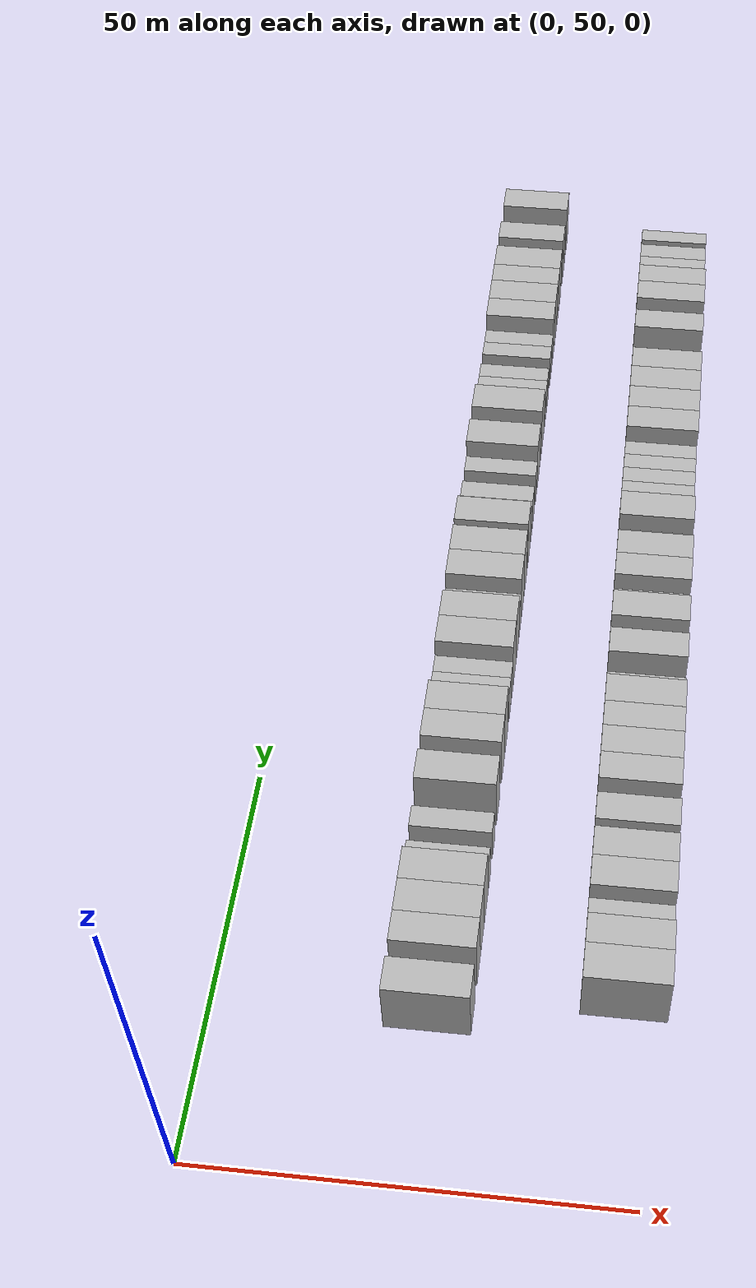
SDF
<sdf version="1.6">
 <world name="default">
  <model name="building_74">
   <static>1</static>
   <pose>25.0000 70.2187 0 0.000000 0.000000 0.000000</pose>
   <link name="link">
    <pose>0 0 4.50 0 0 0</pose>
    <collision name="collision"><geometry><box><size>10.0000 4.1188 9.0000</size></box></geometry></collision>
    <visual name="visual">
     <cast_shadows>0</cast_shadows>
     <geometry><box><size>10.0000 4.1188 9.0000</size></box></geometry>
     <material>
      <script>
       <uri>model://HANNAS_wall/materials/scripts</uri>
       <uri>model://HANNAS_wall/materials/textures</uri>
       <name>vrc/HANNAS_wall</name>
      </script>
     </material>
    </visual>
   </link>
  </model>
  <model name="building_75">
   <static>1</static>
   <pose>25.0000 76.2007 0 0.000000 0.000000 0.000000</pose>
   <link name="link">
    <pose>0 0 4.50 0 0 0</pose>
    <collision name="collision"><geometry><box><size>10.0000 3.8452 9.0000</size></box></geometry></collision>
    <visual name="visual">
     <cast_shadows>0</cast_shadows>
     <geometry><box><size>10.0000 3.8452 9.0000</size></box></geometry>
     <material>
      <script>
       <uri>model://HANNAS_wall/materials/scripts</uri>
       <uri>model://HANNAS_wall/materials/textures</uri>
       <name>vrc/HANNAS_wall</name>
      </script>
     </material>
    </visual>
   </link>
  </model>
  <model name="building_76">
   <static>1</static>
   <pose>25.0000 80.2020 0 0.000000 0.000000 0.000000</pose>
   <link name="link">
    <pose>0 0 4.50 0 0 0</pose>
    <collision name="collision"><geometry><box><size>10.0000 4.1574 9.0000</size></box></geometry></collision>
    <visual name="visual">
     <cast_shadows>0</cast_shadows>
     <geometry><box><size>10.0000 4.1574 9.0000</size></box></geometry>
     <material>
      <script>
       <uri>model://HANNAS_wall/materials/scripts</uri>
       <uri>model://HANNAS_wall/materials/textures</uri>
       <name>vrc/HANNAS_wall</name>
      </script>
     </material>
    </visual>
   </link>
  </model>
  <model name="building_77">
   <static>1</static>
   <pose>25.0000 84.3680 0 0.000000 0.000000 0.000000</pose>
   <link name="link">
    <pose>0 0 4.50 0 0 0</pose>
    <collision name="collision"><geometry><box><size>10.0000 4.1745 9.0000</size></box></geometry></collision>
    <visual name="visual">
     <cast_shadows>0</cast_shadows>
     <geometry><box><size>10.0000 4.1745 9.0000</size></box></geometry>
     <material>
      <script>
       <uri>model://HANNAS_wall/materials/scripts</uri>
       <uri>model://HANNAS_wall/materials/textures</uri>
       <name>vrc/HANNAS_wall</name>
      </script>
     </material>
    </visual>
   </link>
  </model>
  <model name="building_78">
   <static>1</static>
   <pose>25.0000 87.8203 0 0.000000 0.000000 0.000000</pose>
   <link name="link">
    <pose>0 0 3.00 0 0 0</pose>
    <collision name="collision"><geometry><box><size>10.0000 2.7302 6.0000</size></box></geometry></collision>
    <visual name="visual">
     <cast_shadows>0</cast_shadows>
     <geometry><box><size>10.0000 2.7302 6.0000</size></box></geometry>
     <material>
      <script>
       <uri>model://HANNAS_wall/materials/scripts</uri>
       <uri>model://HANNAS_wall/materials/textures</uri>
       <name>vrc/HANNAS_wall</name>
      </script>
     </material>
    </visual>
   </link>
  </model>
  <model name="building_79">
   <static>1</static>
   <pose>25.0000 92.6061 0 0.000000 0.000000 0.000000</pose>
   <link name="link">
    <pose>0 0 3.00 0 0 0</pose>
    <collision name="collision"><geometry><box><size>10.0000 2.8413 6.0000</size></box></geometry></collision>
    <visual name="visual">
     <cast_shadows>0</cast_shadows>
     <geometry><box><size>10.0000 2.8413 6.0000</size></box></geometry>
     <material>
      <script>
       <uri>model://HANNAS_wall/materials/scripts</uri>
       <uri>model://HANNAS_wall/materials/textures</uri>
       <name>vrc/HANNAS_wall</name>
      </script>
     </material>
    </visual>
   </link>
  </model>
  <model name="building_80">
   <static>1</static>
   <pose>25.0000 98.1114 0 0.000000 0.000000 0.000000</pose>
   <link name="link">
    <pose>0 0 4.50 0 0 0</pose>
    <collision name="collision"><geometry><box><size>10.0000 4.1693 9.0000</size></box></geometry></collision>
    <visual name="visual">
     <cast_shadows>0</cast_shadows>
     <geometry><box><size>10.0000 4.1693 9.0000</size></box></geometry>
     <material>
      <script>
       <uri>model://HANNAS_wall/materials/scripts</uri>
       <uri>model://HANNAS_wall/materials/textures</uri>
       <name>vrc/HANNAS_wall</name>
      </script>
     </material>
    </visual>
   </link>
  </model>
  <model name="building_81">
   <static>1</static>
   <pose>25.0000 104.2551 0 0.000000 0.000000 0.000000</pose>
   <link name="link">
    <pose>0 0 4.50 0 0 0</pose>
    <collision name="collision"><geometry><box><size>10.0000 4.1181 9.0000</size></box></geometry></collision>
    <visual name="visual">
     <cast_shadows>0</cast_shadows>
     <geometry><box><size>10.0000 4.1181 9.0000</size></box></geometry>
     <material>
      <script>
       <uri>model://HANNAS_wall/materials/scripts</uri>
       <uri>model://HANNAS_wall/materials/textures</uri>
       <name>vrc/HANNAS_wall</name>
      </script>
     </material>
    </visual>
   </link>
  </model>
  <model name="building_82">
   <static>1</static>
   <pose>25.0000 108.4414 0 0.000000 0.000000 0.000000</pose>
   <link name="link">
    <pose>0 0 4.50 0 0 0</pose>
    <collision name="collision"><geometry><box><size>10.0000 4.2544 9.0000</size></box></geometry></collision>
    <visual name="visual">
     <cast_shadows>0</cast_shadows>
     <geometry><box><size>10.0000 4.2544 9.0000</size></box></geometry>
     <material>
      <script>
       <uri>model://HANNAS_wall/materials/scripts</uri>
       <uri>model://HANNAS_wall/materials/textures</uri>
       <name>vrc/HANNAS_wall</name>
      </script>
     </material>
    </visual>
   </link>
  </model>
  <model name="building_83">
   <static>1</static>
   <pose>25.0000 112.8915 0 0.000000 0.000000 0.000000</pose>
   <link name="link">
    <pose>0 0 3.00 0 0 0</pose>
    <collision name="collision"><geometry><box><size>10.0000 2.6458 6.0000</size></box></geometry></collision>
    <visual name="visual">
     <cast_shadows>0</cast_shadows>
     <geometry><box><size>10.0000 2.6458 6.0000</size></box></geometry>
     <material>
      <script>
       <uri>model://HANNAS_wall/materials/scripts</uri>
       <uri>model://HANNAS_wall/materials/textures</uri>
       <name>vrc/HANNAS_wall</name>
      </script>
     </material>
    </visual>
   </link>
  </model>
  <model name="building_84">
   <static>1</static>
   <pose>25.0000 115.4899 0 0.000000 0.000000 0.000000</pose>
   <link name="link">
    <pose>0 0 3.00 0 0 0</pose>
    <collision name="collision"><geometry><box><size>10.0000 2.5511 6.0000</size></box></geometry></collision>
    <visual name="visual">
     <cast_shadows>0</cast_shadows>
     <geometry><box><size>10.0000 2.5511 6.0000</size></box></geometry>
     <material>
      <script>
       <uri>model://HANNAS_wall/materials/scripts</uri>
       <uri>model://HANNAS_wall/materials/textures</uri>
       <name>vrc/HANNAS_wall</name>
      </script>
     </material>
    </visual>
   </link>
  </model>
  <model name="building_85">
   <static>1</static>
   <pose>25.0000 118.9108 0 0.000000 0.000000 0.000000</pose>
   <link name="link">
    <pose>0 0 4.50 0 0 0</pose>
    <collision name="collision"><geometry><box><size>10.0000 4.2908 9.0000</size></box></geometry></collision>
    <visual name="visual">
     <cast_shadows>0</cast_shadows>
     <geometry><box><size>10.0000 4.2908 9.0000</size></box></geometry>
     <material>
      <script>
       <uri>model://HANNAS_wall/materials/scripts</uri>
       <uri>model://HANNAS_wall/materials/textures</uri>
       <name>vrc/HANNAS_wall</name>
      </script>
     </material>
    </visual>
   </link>
  </model>
  <model name="building_86">
   <static>1</static>
   <pose>25.0000 123.1293 0 0.000000 0.000000 0.000000</pose>
   <link name="link">
    <pose>0 0 4.50 0 0 0</pose>
    <collision name="collision"><geometry><box><size>10.0000 4.1462 9.0000</size></box></geometry></collision>
    <visual name="visual">
     <cast_shadows>0</cast_shadows>
     <geometry><box><size>10.0000 4.1462 9.0000</size></box></geometry>
     <material>
      <script>
       <uri>model://HANNAS_wall/materials/scripts</uri>
       <uri>model://HANNAS_wall/materials/textures</uri>
       <name>vrc/HANNAS_wall</name>
      </script>
     </material>
    </visual>
   </link>
  </model>
  <model name="building_87">
   <static>1</static>
   <pose>25.0000 126.5987 0 0.000000 0.000000 0.000000</pose>
   <link name="link">
    <pose>0 0 3.00 0 0 0</pose>
    <collision name="collision"><geometry><box><size>10.0000 2.7926 6.0000</size></box></geometry></collision>
    <visual name="visual">
     <cast_shadows>0</cast_shadows>
     <geometry><box><size>10.0000 2.7926 6.0000</size></box></geometry>
     <material>
      <script>
       <uri>model://HANNAS_wall/materials/scripts</uri>
       <uri>model://HANNAS_wall/materials/textures</uri>
       <name>vrc/HANNAS_wall</name>
      </script>
     </material>
    </visual>
   </link>
  </model>
  <model name="building_88">
   <static>1</static>
   <pose>25.0000 130.1476 0 0.000000 0.000000 0.000000</pose>
   <link name="link">
    <pose>0 0 4.50 0 0 0</pose>
    <collision name="collision"><geometry><box><size>10.0000 4.3051 9.0000</size></box></geometry></collision>
    <visual name="visual">
     <cast_shadows>0</cast_shadows>
     <geometry><box><size>10.0000 4.3051 9.0000</size></box></geometry>
     <material>
      <script>
       <uri>model://HANNAS_wall/materials/scripts</uri>
       <uri>model://HANNAS_wall/materials/textures</uri>
       <name>vrc/HANNAS_wall</name>
      </script>
     </material>
    </visual>
   </link>
  </model>
  <model name="building_89">
   <static>1</static>
   <pose>25.0000 134.4338 0 0.000000 0.000000 0.000000</pose>
   <link name="link">
    <pose>0 0 4.50 0 0 0</pose>
    <collision name="collision"><geometry><box><size>10.0000 4.2674 9.0000</size></box></geometry></collision>
    <visual name="visual">
     <cast_shadows>0</cast_shadows>
     <geometry><box><size>10.0000 4.2674 9.0000</size></box></geometry>
     <material>
      <script>
       <uri>model://HANNAS_wall/materials/scripts</uri>
       <uri>model://HANNAS_wall/materials/textures</uri>
       <name>vrc/HANNAS_wall</name>
      </script>
     </material>
    </visual>
   </link>
  </model>
  <model name="building_90">
   <static>1</static>
   <pose>25.0000 139.6768 0 0.000000 0.000000 0.000000</pose>
   <link name="link">
    <pose>0 0 4.50 0 0 0</pose>
    <collision name="collision"><geometry><box><size>10.0000 4.2186 9.0000</size></box></geometry></collision>
    <visual name="visual">
     <cast_shadows>0</cast_shadows>
     <geometry><box><size>10.0000 4.2186 9.0000</size></box></geometry>
     <material>
      <script>
       <uri>model://HANNAS_wall/materials/scripts</uri>
       <uri>model://HANNAS_wall/materials/textures</uri>
       <name>vrc/HANNAS_wall</name>
      </script>
     </material>
    </visual>
   </link>
  </model>
  <model name="building_91">
   <static>1</static>
   <pose>25.0000 143.1825 0 0.000000 0.000000 0.000000</pose>
   <link name="link">
    <pose>0 0 3.00 0 0 0</pose>
    <collision name="collision"><geometry><box><size>10.0000 2.7928 6.0000</size></box></geometry></collision>
    <visual name="visual">
     <cast_shadows>0</cast_shadows>
     <geometry><box><size>10.0000 2.7928 6.0000</size></box></geometry>
     <material>
      <script>
       <uri>model://HANNAS_wall/materials/scripts</uri>
       <uri>model://HANNAS_wall/materials/textures</uri>
       <name>vrc/HANNAS_wall</name>
      </script>
     </material>
    </visual>
   </link>
  </model>
  <model name="building_92">
   <static>1</static>
   <pose>25.0000 145.9728 0 0.000000 0.000000 0.000000</pose>
   <link name="link">
    <pose>0 0 3.00 0 0 0</pose>
    <collision name="collision"><geometry><box><size>10.0000 2.7876 6.0000</size></box></geometry></collision>
    <visual name="visual">
     <cast_shadows>0</cast_shadows>
     <geometry><box><size>10.0000 2.7876 6.0000</size></box></geometry>
     <material>
      <script>
       <uri>model://HANNAS_wall/materials/scripts</uri>
       <uri>model://HANNAS_wall/materials/textures</uri>
       <name>vrc/HANNAS_wall</name>
      </script>
     </material>
    </visual>
   </link>
  </model>
  <model name="building_93">
   <static>1</static>
   <pose>25.0000 150.7443 0 0.000000 0.000000 0.000000</pose>
   <link name="link">
    <pose>0 0 3.00 0 0 0</pose>
    <collision name="collision"><geometry><box><size>10.0000 2.7555 6.0000</size></box></geometry></collision>
    <visual name="visual">
     <cast_shadows>0</cast_shadows>
     <geometry><box><size>10.0000 2.7555 6.0000</size></box></geometry>
     <material>
      <script>
       <uri>model://HANNAS_wall/materials/scripts</uri>
       <uri>model://HANNAS_wall/materials/textures</uri>
       <name>vrc/HANNAS_wall</name>
      </script>
     </material>
    </visual>
   </link>
  </model>
  <model name="building_94">
   <static>1</static>
   <pose>25.0000 154.3201 0 0.000000 0.000000 0.000000</pose>
   <link name="link">
    <pose>0 0 4.50 0 0 0</pose>
    <collision name="collision"><geometry><box><size>10.0000 4.3960 9.0000</size></box></geometry></collision>
    <visual name="visual">
     <cast_shadows>0</cast_shadows>
     <geometry><box><size>10.0000 4.3960 9.0000</size></box></geometry>
     <material>
      <script>
       <uri>model://HANNAS_wall/materials/scripts</uri>
       <uri>model://HANNAS_wall/materials/textures</uri>
       <name>vrc/HANNAS_wall</name>
      </script>
     </material>
    </visual>
   </link>
  </model>
  <model name="building_95">
   <static>1</static>
   <pose>25.0000 157.7613 0 0.000000 0.000000 0.000000</pose>
   <link name="link">
    <pose>0 0 3.00 0 0 0</pose>
    <collision name="collision"><geometry><box><size>10.0000 2.4864 6.0000</size></box></geometry></collision>
    <visual name="visual">
     <cast_shadows>0</cast_shadows>
     <geometry><box><size>10.0000 2.4864 6.0000</size></box></geometry>
     <material>
      <script>
       <uri>model://HANNAS_wall/materials/scripts</uri>
       <uri>model://HANNAS_wall/materials/textures</uri>
       <name>vrc/HANNAS_wall</name>
      </script>
     </material>
    </visual>
   </link>
  </model>
  <model name="building_96">
   <static>1</static>
   <pose>25.0000 161.2517 0 0.000000 0.000000 0.000000</pose>
   <link name="link">
    <pose>0 0 4.50 0 0 0</pose>
    <collision name="collision"><geometry><box><size>10.0000 4.4944 9.0000</size></box></geometry></collision>
    <visual name="visual">
     <cast_shadows>0</cast_shadows>
     <geometry><box><size>10.0000 4.4944 9.0000</size></box></geometry>
     <material>
      <script>
       <uri>model://HANNAS_wall/materials/scripts</uri>
       <uri>model://HANNAS_wall/materials/textures</uri>
       <name>vrc/HANNAS_wall</name>
      </script>
     </material>
    </visual>
   </link>
  </model>
  <model name="building_97">
   <static>1</static>
   <pose>25.0000 164.7133 0 0.000000 0.000000 0.000000</pose>
   <link name="link">
    <pose>0 0 3.00 0 0 0</pose>
    <collision name="collision"><geometry><box><size>10.0000 2.4288 6.0000</size></box></geometry></collision>
    <visual name="visual">
     <cast_shadows>0</cast_shadows>
     <geometry><box><size>10.0000 2.4288 6.0000</size></box></geometry>
     <material>
      <script>
       <uri>model://HANNAS_wall/materials/scripts</uri>
       <uri>model://HANNAS_wall/materials/textures</uri>
       <name>vrc/HANNAS_wall</name>
      </script>
     </material>
    </visual>
   </link>
  </model>
  <model name="building_98">
   <static>1</static>
   <pose>25.0000 167.1701 0 0.000000 0.000000 0.000000</pose>
   <link name="link">
    <pose>0 0 3.00 0 0 0</pose>
    <collision name="collision"><geometry><box><size>10.0000 2.4847 6.0000</size></box></geometry></collision>
    <visual name="visual">
     <cast_shadows>0</cast_shadows>
     <geometry><box><size>10.0000 2.4847 6.0000</size></box></geometry>
     <material>
      <script>
       <uri>model://HANNAS_wall/materials/scripts</uri>
       <uri>model://HANNAS_wall/materials/textures</uri>
       <name>vrc/HANNAS_wall</name>
      </script>
     </material>
    </visual>
   </link>
  </model>
  <model name="building_99">
   <static>1</static>
   <pose>25.0000 169.7134 0 0.000000 0.000000 0.000000</pose>
   <link name="link">
    <pose>0 0 3.00 0 0 0</pose>
    <collision name="collision"><geometry><box><size>10.0000 2.6019 6.0000</size></box></geometry></collision>
    <visual name="visual">
     <cast_shadows>0</cast_shadows>
     <geometry><box><size>10.0000 2.6019 6.0000</size></box></geometry>
     <material>
      <script>
       <uri>model://HANNAS_wall/materials/scripts</uri>
       <uri>model://HANNAS_wall/materials/textures</uri>
       <name>vrc/HANNAS_wall</name>
      </script>
     </material>
    </visual>
   </link>
  </model>
  <model name="building_100">
   <static>1</static>
   <pose>25.0000 174.3544 0 0.000000 0.000000 0.000000</pose>
   <link name="link">
    <pose>0 0 3.00 0 0 0</pose>
    <collision name="collision"><geometry><box><size>10.0000 2.6802 6.0000</size></box></geometry></collision>
    <visual name="visual">
     <cast_shadows>0</cast_shadows>
     <geometry><box><size>10.0000 2.6802 6.0000</size></box></geometry>
     <material>
      <script>
       <uri>model://HANNAS_wall/materials/scripts</uri>
       <uri>model://HANNAS_wall/materials/textures</uri>
       <name>vrc/HANNAS_wall</name>
      </script>
     </material>
    </visual>
   </link>
  </model>
  <model name="building_101">
   <static>1</static>
   <pose>25.0000 176.9954 0 0.000000 0.000000 0.000000</pose>
   <link name="link">
    <pose>0 0 3.00 0 0 0</pose>
    <collision name="collision"><geometry><box><size>10.0000 2.6018 6.0000</size></box></geometry></collision>
    <visual name="visual">
     <cast_shadows>0</cast_shadows>
     <geometry><box><size>10.0000 2.6018 6.0000</size></box></geometry>
     <material>
      <script>
       <uri>model://HANNAS_wall/materials/scripts</uri>
       <uri>model://HANNAS_wall/materials/textures</uri>
       <name>vrc/HANNAS_wall</name>
      </script>
     </material>
    </visual>
   </link>
  </model>
  <model name="building_102">
   <static>1</static>
   <pose>25.0000 180.2079 0 0.000000 0.000000 0.000000</pose>
   <link name="link">
    <pose>0 0 4.50 0 0 0</pose>
    <collision name="collision"><geometry><box><size>10.0000 3.8231 9.0000</size></box></geometry></collision>
    <visual name="visual">
     <cast_shadows>0</cast_shadows>
     <geometry><box><size>10.0000 3.8231 9.0000</size></box></geometry>
     <material>
      <script>
       <uri>model://HANNAS_wall/materials/scripts</uri>
       <uri>model://HANNAS_wall/materials/textures</uri>
       <name>vrc/HANNAS_wall</name>
      </script>
     </material>
    </visual>
   </link>
  </model>
  <model name="building_103">
   <static>1</static>
   <pose>25.0000 184.1774 0 0.000000 0.000000 0.000000</pose>
   <link name="link">
    <pose>0 0 4.50 0 0 0</pose>
    <collision name="collision"><geometry><box><size>10.0000 4.1160 9.0000</size></box></geometry></collision>
    <visual name="visual">
     <cast_shadows>0</cast_shadows>
     <geometry><box><size>10.0000 4.1160 9.0000</size></box></geometry>
     <material>
      <script>
       <uri>model://HANNAS_wall/materials/scripts</uri>
       <uri>model://HANNAS_wall/materials/textures</uri>
       <name>vrc/HANNAS_wall</name>
      </script>
     </material>
    </visual>
   </link>
  </model>
  <model name="building_104">
   <static>1</static>
   <pose>25.0000 188.0455 0 0.000000 0.000000 0.000000</pose>
   <link name="link">
    <pose>0 0 4.50 0 0 0</pose>
    <collision name="collision"><geometry><box><size>10.0000 3.6203 9.0000</size></box></geometry></collision>
    <visual name="visual">
     <cast_shadows>0</cast_shadows>
     <geometry><box><size>10.0000 3.6203 9.0000</size></box></geometry>
     <material>
      <script>
       <uri>model://HANNAS_wall/materials/scripts</uri>
       <uri>model://HANNAS_wall/materials/textures</uri>
       <name>vrc/HANNAS_wall</name>
      </script>
     </material>
    </visual>
   </link>
  </model>
  <model name="building_105">
   <static>1</static>
   <pose>25.0000 192.0481 0 0.000000 0.000000 0.000000</pose>
   <link name="link">
    <pose>0 0 4.50 0 0 0</pose>
    <collision name="collision"><geometry><box><size>10.0000 4.3847 9.0000</size></box></geometry></collision>
    <visual name="visual">
     <cast_shadows>0</cast_shadows>
     <geometry><box><size>10.0000 4.3847 9.0000</size></box></geometry>
     <material>
      <script>
       <uri>model://HANNAS_wall/materials/scripts</uri>
       <uri>model://HANNAS_wall/materials/textures</uri>
       <name>vrc/HANNAS_wall</name>
      </script>
     </material>
    </visual>
   </link>
  </model>
  <model name="building_106">
   <static>1</static>
   <pose>25.0000 198.1376 0 0.000000 0.000000 0.000000</pose>
   <link name="link">
    <pose>0 0 4.50 0 0 0</pose>
    <collision name="collision"><geometry><box><size>10.0000 3.7943 9.0000</size></box></geometry></collision>
    <visual name="visual">
     <cast_shadows>0</cast_shadows>
     <geometry><box><size>10.0000 3.7943 9.0000</size></box></geometry>
     <material>
      <script>
       <uri>model://HANNAS_wall/materials/scripts</uri>
       <uri>model://HANNAS_wall/materials/textures</uri>
       <name>vrc/HANNAS_wall</name>
      </script>
     </material>
    </visual>
   </link>
  </model>
  <model name="building_107">
   <static>1</static>
   <pose>25.0000 201.4490 0 0.000000 0.000000 0.000000</pose>
   <link name="link">
    <pose>0 0 3.00 0 0 0</pose>
    <collision name="collision"><geometry><box><size>10.0000 2.8283 6.0000</size></box></geometry></collision>
    <visual name="visual">
     <cast_shadows>0</cast_shadows>
     <geometry><box><size>10.0000 2.8283 6.0000</size></box></geometry>
     <material>
      <script>
       <uri>model://HANNAS_wall/materials/scripts</uri>
       <uri>model://HANNAS_wall/materials/textures</uri>
       <name>vrc/HANNAS_wall</name>
      </script>
     </material>
    </visual>
   </link>
  </model>
  <model name="building_108">
   <static>1</static>
   <pose>25.0000 205.9913 0 0.000000 0.000000 0.000000</pose>
   <link name="link">
    <pose>0 0 4.50 0 0 0</pose>
    <collision name="collision"><geometry><box><size>10.0000 4.2564 9.0000</size></box></geometry></collision>
    <visual name="visual">
     <cast_shadows>0</cast_shadows>
     <geometry><box><size>10.0000 4.2564 9.0000</size></box></geometry>
     <material>
      <script>
       <uri>model://HANNAS_wall/materials/scripts</uri>
       <uri>model://HANNAS_wall/materials/textures</uri>
       <name>vrc/HANNAS_wall</name>
      </script>
     </material>
    </visual>
   </link>
  </model>
  <model name="building_174">
   <static>1</static>
   <pose>47.0000 74.2032 0 0.000000 0.000000 0.000000</pose>
   <link name="link">
    <pose>0 0 4.50 0 0 0</pose>
    <collision name="collision"><geometry><box><size>10.0000 4.3730 9.0000</size></box></geometry></collision>
    <visual name="visual">
     <cast_shadows>0</cast_shadows>
     <geometry><box><size>10.0000 4.3730 9.0000</size></box></geometry>
     <material>
      <script>
       <uri>model://HANNAS_wall/materials/scripts</uri>
       <uri>model://HANNAS_wall/materials/textures</uri>
       <name>vrc/HANNAS_wall</name>
      </script>
     </material>
    </visual>
   </link>
  </model>
  <model name="building_175">
   <static>1</static>
   <pose>47.0000 78.2514 0 0.000000 0.000000 0.000000</pose>
   <link name="link">
    <pose>0 0 4.50 0 0 0</pose>
    <collision name="collision"><geometry><box><size>10.0000 3.7232 9.0000</size></box></geometry></collision>
    <visual name="visual">
     <cast_shadows>0</cast_shadows>
     <geometry><box><size>10.0000 3.7232 9.0000</size></box></geometry>
     <material>
      <script>
       <uri>model://HANNAS_wall/materials/scripts</uri>
       <uri>model://HANNAS_wall/materials/textures</uri>
       <name>vrc/HANNAS_wall</name>
      </script>
     </material>
    </visual>
   </link>
  </model>
  <model name="building_176">
   <static>1</static>
   <pose>47.0000 82.4252 0 0.000000 0.000000 0.000000</pose>
   <link name="link">
    <pose>0 0 3.00 0 0 0</pose>
    <collision name="collision"><geometry><box><size>10.0000 2.6243 6.0000</size></box></geometry></collision>
    <visual name="visual">
     <cast_shadows>0</cast_shadows>
     <geometry><box><size>10.0000 2.6243 6.0000</size></box></geometry>
     <material>
      <script>
       <uri>model://HANNAS_wall/materials/scripts</uri>
       <uri>model://HANNAS_wall/materials/textures</uri>
       <name>vrc/HANNAS_wall</name>
      </script>
     </material>
    </visual>
   </link>
  </model>
  <model name="building_177">
   <static>1</static>
   <pose>47.0000 85.7442 0 0.000000 0.000000 0.000000</pose>
   <link name="link">
    <pose>0 0 4.50 0 0 0</pose>
    <collision name="collision"><geometry><box><size>10.0000 4.0138 9.0000</size></box></geometry></collision>
    <visual name="visual">
     <cast_shadows>0</cast_shadows>
     <geometry><box><size>10.0000 4.0138 9.0000</size></box></geometry>
     <material>
      <script>
       <uri>model://HANNAS_wall/materials/scripts</uri>
       <uri>model://HANNAS_wall/materials/textures</uri>
       <name>vrc/HANNAS_wall</name>
      </script>
     </material>
    </visual>
   </link>
  </model>
  <model name="building_178">
   <static>1</static>
   <pose>47.0000 89.6944 0 0.000000 0.000000 0.000000</pose>
   <link name="link">
    <pose>0 0 4.50 0 0 0</pose>
    <collision name="collision"><geometry><box><size>10.0000 3.8865 9.0000</size></box></geometry></collision>
    <visual name="visual">
     <cast_shadows>0</cast_shadows>
     <geometry><box><size>10.0000 3.8865 9.0000</size></box></geometry>
     <material>
      <script>
       <uri>model://HANNAS_wall/materials/scripts</uri>
       <uri>model://HANNAS_wall/materials/textures</uri>
       <name>vrc/HANNAS_wall</name>
      </script>
     </material>
    </visual>
   </link>
  </model>
  <model name="building_179">
   <static>1</static>
   <pose>47.0000 94.5158 0 0.000000 0.000000 0.000000</pose>
   <link name="link">
    <pose>0 0 4.50 0 0 0</pose>
    <collision name="collision"><geometry><box><size>10.0000 3.7563 9.0000</size></box></geometry></collision>
    <visual name="visual">
     <cast_shadows>0</cast_shadows>
     <geometry><box><size>10.0000 3.7563 9.0000</size></box></geometry>
     <material>
      <script>
       <uri>model://HANNAS_wall/materials/scripts</uri>
       <uri>model://HANNAS_wall/materials/textures</uri>
       <name>vrc/HANNAS_wall</name>
      </script>
     </material>
    </visual>
   </link>
  </model>
  <model name="building_180">
   <static>1</static>
   <pose>47.0000 100.3091 0 0.000000 0.000000 0.000000</pose>
   <link name="link">
    <pose>0 0 4.50 0 0 0</pose>
    <collision name="collision"><geometry><box><size>10.0000 3.8301 9.0000</size></box></geometry></collision>
    <visual name="visual">
     <cast_shadows>0</cast_shadows>
     <geometry><box><size>10.0000 3.8301 9.0000</size></box></geometry>
     <material>
      <script>
       <uri>model://HANNAS_wall/materials/scripts</uri>
       <uri>model://HANNAS_wall/materials/textures</uri>
       <name>vrc/HANNAS_wall</name>
      </script>
     </material>
    </visual>
   </link>
  </model>
  <model name="building_181">
   <static>1</static>
   <pose>47.0000 104.1818 0 0.000000 0.000000 0.000000</pose>
   <link name="link">
    <pose>0 0 4.50 0 0 0</pose>
    <collision name="collision"><geometry><box><size>10.0000 3.9153 9.0000</size></box></geometry></collision>
    <visual name="visual">
     <cast_shadows>0</cast_shadows>
     <geometry><box><size>10.0000 3.9153 9.0000</size></box></geometry>
     <material>
      <script>
       <uri>model://HANNAS_wall/materials/scripts</uri>
       <uri>model://HANNAS_wall/materials/textures</uri>
       <name>vrc/HANNAS_wall</name>
      </script>
     </material>
    </visual>
   </link>
  </model>
  <model name="building_182">
   <static>1</static>
   <pose>47.0000 107.9790 0 0.000000 0.000000 0.000000</pose>
   <link name="link">
    <pose>0 0 4.50 0 0 0</pose>
    <collision name="collision"><geometry><box><size>10.0000 3.6793 9.0000</size></box></geometry></collision>
    <visual name="visual">
     <cast_shadows>0</cast_shadows>
     <geometry><box><size>10.0000 3.6793 9.0000</size></box></geometry>
     <material>
      <script>
       <uri>model://HANNAS_wall/materials/scripts</uri>
       <uri>model://HANNAS_wall/materials/textures</uri>
       <name>vrc/HANNAS_wall</name>
      </script>
     </material>
    </visual>
   </link>
  </model>
  <model name="building_183">
   <static>1</static>
   <pose>47.0000 111.8722 0 0.000000 0.000000 0.000000</pose>
   <link name="link">
    <pose>0 0 4.50 0 0 0</pose>
    <collision name="collision"><geometry><box><size>10.0000 4.1070 9.0000</size></box></geometry></collision>
    <visual name="visual">
     <cast_shadows>0</cast_shadows>
     <geometry><box><size>10.0000 4.1070 9.0000</size></box></geometry>
     <material>
      <script>
       <uri>model://HANNAS_wall/materials/scripts</uri>
       <uri>model://HANNAS_wall/materials/textures</uri>
       <name>vrc/HANNAS_wall</name>
      </script>
     </material>
    </visual>
   </link>
  </model>
  <model name="building_184">
   <static>1</static>
   <pose>47.0000 115.2304 0 0.000000 0.000000 0.000000</pose>
   <link name="link">
    <pose>0 0 3.00 0 0 0</pose>
    <collision name="collision"><geometry><box><size>10.0000 2.6095 6.0000</size></box></geometry></collision>
    <visual name="visual">
     <cast_shadows>0</cast_shadows>
     <geometry><box><size>10.0000 2.6095 6.0000</size></box></geometry>
     <material>
      <script>
       <uri>model://HANNAS_wall/materials/scripts</uri>
       <uri>model://HANNAS_wall/materials/textures</uri>
       <name>vrc/HANNAS_wall</name>
      </script>
     </material>
    </visual>
   </link>
  </model>
  <model name="building_185">
   <static>1</static>
   <pose>47.0000 119.4689 0 0.000000 0.000000 0.000000</pose>
   <link name="link">
    <pose>0 0 4.50 0 0 0</pose>
    <collision name="collision"><geometry><box><size>10.0000 3.8676 9.0000</size></box></geometry></collision>
    <visual name="visual">
     <cast_shadows>0</cast_shadows>
     <geometry><box><size>10.0000 3.8676 9.0000</size></box></geometry>
     <material>
      <script>
       <uri>model://HANNAS_wall/materials/scripts</uri>
       <uri>model://HANNAS_wall/materials/textures</uri>
       <name>vrc/HANNAS_wall</name>
      </script>
     </material>
    </visual>
   </link>
  </model>
  <model name="building_186">
   <static>1</static>
   <pose>47.0000 125.4946 0 0.000000 0.000000 0.000000</pose>
   <link name="link">
    <pose>0 0 4.50 0 0 0</pose>
    <collision name="collision"><geometry><box><size>10.0000 4.1836 9.0000</size></box></geometry></collision>
    <visual name="visual">
     <cast_shadows>0</cast_shadows>
     <geometry><box><size>10.0000 4.1836 9.0000</size></box></geometry>
     <material>
      <script>
       <uri>model://HANNAS_wall/materials/scripts</uri>
       <uri>model://HANNAS_wall/materials/textures</uri>
       <name>vrc/HANNAS_wall</name>
      </script>
     </material>
    </visual>
   </link>
  </model>
  <model name="building_187">
   <static>1</static>
   <pose>47.0000 128.9352 0 0.000000 0.000000 0.000000</pose>
   <link name="link">
    <pose>0 0 3.00 0 0 0</pose>
    <collision name="collision"><geometry><box><size>10.0000 2.6977 6.0000</size></box></geometry></collision>
    <visual name="visual">
     <cast_shadows>0</cast_shadows>
     <geometry><box><size>10.0000 2.6977 6.0000</size></box></geometry>
     <material>
      <script>
       <uri>model://HANNAS_wall/materials/scripts</uri>
       <uri>model://HANNAS_wall/materials/textures</uri>
       <name>vrc/HANNAS_wall</name>
      </script>
     </material>
    </visual>
   </link>
  </model>
  <model name="building_188">
   <static>1</static>
   <pose>47.0000 132.1552 0 0.000000 0.000000 0.000000</pose>
   <link name="link">
    <pose>0 0 4.50 0 0 0</pose>
    <collision name="collision"><geometry><box><size>10.0000 3.7423 9.0000</size></box></geometry></collision>
    <visual name="visual">
     <cast_shadows>0</cast_shadows>
     <geometry><box><size>10.0000 3.7423 9.0000</size></box></geometry>
     <material>
      <script>
       <uri>model://HANNAS_wall/materials/scripts</uri>
       <uri>model://HANNAS_wall/materials/textures</uri>
       <name>vrc/HANNAS_wall</name>
      </script>
     </material>
    </visual>
   </link>
  </model>
  <model name="building_189">
   <static>1</static>
   <pose>47.0000 136.0038 0 0.000000 0.000000 0.000000</pose>
   <link name="link">
    <pose>0 0 4.50 0 0 0</pose>
    <collision name="collision"><geometry><box><size>10.0000 3.9549 9.0000</size></box></geometry></collision>
    <visual name="visual">
     <cast_shadows>0</cast_shadows>
     <geometry><box><size>10.0000 3.9549 9.0000</size></box></geometry>
     <material>
      <script>
       <uri>model://HANNAS_wall/materials/scripts</uri>
       <uri>model://HANNAS_wall/materials/textures</uri>
       <name>vrc/HANNAS_wall</name>
      </script>
     </material>
    </visual>
   </link>
  </model>
  <model name="building_190">
   <static>1</static>
   <pose>47.0000 139.3868 0 0.000000 0.000000 0.000000</pose>
   <link name="link">
    <pose>0 0 3.00 0 0 0</pose>
    <collision name="collision"><geometry><box><size>10.0000 2.8111 6.0000</size></box></geometry></collision>
    <visual name="visual">
     <cast_shadows>0</cast_shadows>
     <geometry><box><size>10.0000 2.8111 6.0000</size></box></geometry>
     <material>
      <script>
       <uri>model://HANNAS_wall/materials/scripts</uri>
       <uri>model://HANNAS_wall/materials/textures</uri>
       <name>vrc/HANNAS_wall</name>
      </script>
     </material>
    </visual>
   </link>
  </model>
  <model name="building_191">
   <static>1</static>
   <pose>47.0000 142.9312 0 0.000000 0.000000 0.000000</pose>
   <link name="link">
    <pose>0 0 4.50 0 0 0</pose>
    <collision name="collision"><geometry><box><size>10.0000 4.2776 9.0000</size></box></geometry></collision>
    <visual name="visual">
     <cast_shadows>0</cast_shadows>
     <geometry><box><size>10.0000 4.2776 9.0000</size></box></geometry>
     <material>
      <script>
       <uri>model://HANNAS_wall/materials/scripts</uri>
       <uri>model://HANNAS_wall/materials/textures</uri>
       <name>vrc/HANNAS_wall</name>
      </script>
     </material>
    </visual>
   </link>
  </model>
  <model name="building_192">
   <static>1</static>
   <pose>47.0000 148.4260 0 0.000000 0.000000 0.000000</pose>
   <link name="link">
    <pose>0 0 3.00 0 0 0</pose>
    <collision name="collision"><geometry><box><size>10.0000 2.7120 6.0000</size></box></geometry></collision>
    <visual name="visual">
     <cast_shadows>0</cast_shadows>
     <geometry><box><size>10.0000 2.7120 6.0000</size></box></geometry>
     <material>
      <script>
       <uri>model://HANNAS_wall/materials/scripts</uri>
       <uri>model://HANNAS_wall/materials/textures</uri>
       <name>vrc/HANNAS_wall</name>
      </script>
     </material>
    </visual>
   </link>
  </model>
  <model name="building_193">
   <static>1</static>
   <pose>47.0000 151.0899 0 0.000000 0.000000 0.000000</pose>
   <link name="link">
    <pose>0 0 3.00 0 0 0</pose>
    <collision name="collision"><geometry><box><size>10.0000 2.6159 6.0000</size></box></geometry></collision>
    <visual name="visual">
     <cast_shadows>0</cast_shadows>
     <geometry><box><size>10.0000 2.6159 6.0000</size></box></geometry>
     <material>
      <script>
       <uri>model://HANNAS_wall/materials/scripts</uri>
       <uri>model://HANNAS_wall/materials/textures</uri>
       <name>vrc/HANNAS_wall</name>
      </script>
     </material>
    </visual>
   </link>
  </model>
  <model name="building_194">
   <static>1</static>
   <pose>47.0000 153.6716 0 0.000000 0.000000 0.000000</pose>
   <link name="link">
    <pose>0 0 3.00 0 0 0</pose>
    <collision name="collision"><geometry><box><size>10.0000 2.5474 6.0000</size></box></geometry></collision>
    <visual name="visual">
     <cast_shadows>0</cast_shadows>
     <geometry><box><size>10.0000 2.5474 6.0000</size></box></geometry>
     <material>
      <script>
       <uri>model://HANNAS_wall/materials/scripts</uri>
       <uri>model://HANNAS_wall/materials/textures</uri>
       <name>vrc/HANNAS_wall</name>
      </script>
     </material>
    </visual>
   </link>
  </model>
  <model name="building_195">
   <static>1</static>
   <pose>47.0000 156.1915 0 0.000000 0.000000 0.000000</pose>
   <link name="link">
    <pose>0 0 3.00 0 0 0</pose>
    <collision name="collision"><geometry><box><size>10.0000 2.4924 6.0000</size></box></geometry></collision>
    <visual name="visual">
     <cast_shadows>0</cast_shadows>
     <geometry><box><size>10.0000 2.4924 6.0000</size></box></geometry>
     <material>
      <script>
       <uri>model://HANNAS_wall/materials/scripts</uri>
       <uri>model://HANNAS_wall/materials/textures</uri>
       <name>vrc/HANNAS_wall</name>
      </script>
     </material>
    </visual>
   </link>
  </model>
  <model name="building_196">
   <static>1</static>
   <pose>47.0000 159.4667 0 0.000000 0.000000 0.000000</pose>
   <link name="link">
    <pose>0 0 4.50 0 0 0</pose>
    <collision name="collision"><geometry><box><size>10.0000 4.0581 9.0000</size></box></geometry></collision>
    <visual name="visual">
     <cast_shadows>0</cast_shadows>
     <geometry><box><size>10.0000 4.0581 9.0000</size></box></geometry>
     <material>
      <script>
       <uri>model://HANNAS_wall/materials/scripts</uri>
       <uri>model://HANNAS_wall/materials/textures</uri>
       <name>vrc/HANNAS_wall</name>
      </script>
     </material>
    </visual>
   </link>
  </model>
  <model name="building_197">
   <static>1</static>
   <pose>47.0000 163.5439 0 0.000000 0.000000 0.000000</pose>
   <link name="link">
    <pose>0 0 4.50 0 0 0</pose>
    <collision name="collision"><geometry><box><size>10.0000 4.0963 9.0000</size></box></geometry></collision>
    <visual name="visual">
     <cast_shadows>0</cast_shadows>
     <geometry><box><size>10.0000 4.0963 9.0000</size></box></geometry>
     <material>
      <script>
       <uri>model://HANNAS_wall/materials/scripts</uri>
       <uri>model://HANNAS_wall/materials/textures</uri>
       <name>vrc/HANNAS_wall</name>
      </script>
     </material>
    </visual>
   </link>
  </model>
  <model name="building_198">
   <static>1</static>
   <pose>47.0000 167.6676 0 0.000000 0.000000 0.000000</pose>
   <link name="link">
    <pose>0 0 4.50 0 0 0</pose>
    <collision name="collision"><geometry><box><size>10.0000 4.1511 9.0000</size></box></geometry></collision>
    <visual name="visual">
     <cast_shadows>0</cast_shadows>
     <geometry><box><size>10.0000 4.1511 9.0000</size></box></geometry>
     <material>
      <script>
       <uri>model://HANNAS_wall/materials/scripts</uri>
       <uri>model://HANNAS_wall/materials/textures</uri>
       <name>vrc/HANNAS_wall</name>
      </script>
     </material>
    </visual>
   </link>
  </model>
  <model name="building_199">
   <static>1</static>
   <pose>47.0000 171.7007 0 0.000000 0.000000 0.000000</pose>
   <link name="link">
    <pose>0 0 4.50 0 0 0</pose>
    <collision name="collision"><geometry><box><size>10.0000 3.9150 9.0000</size></box></geometry></collision>
    <visual name="visual">
     <cast_shadows>0</cast_shadows>
     <geometry><box><size>10.0000 3.9150 9.0000</size></box></geometry>
     <material>
      <script>
       <uri>model://HANNAS_wall/materials/scripts</uri>
       <uri>model://HANNAS_wall/materials/textures</uri>
       <name>vrc/HANNAS_wall</name>
      </script>
     </material>
    </visual>
   </link>
  </model>
  <model name="building_200">
   <static>1</static>
   <pose>47.0000 174.8882 0 0.000000 0.000000 0.000000</pose>
   <link name="link">
    <pose>0 0 3.00 0 0 0</pose>
    <collision name="collision"><geometry><box><size>10.0000 2.4601 6.0000</size></box></geometry></collision>
    <visual name="visual">
     <cast_shadows>0</cast_shadows>
     <geometry><box><size>10.0000 2.4601 6.0000</size></box></geometry>
     <material>
      <script>
       <uri>model://HANNAS_wall/materials/scripts</uri>
       <uri>model://HANNAS_wall/materials/textures</uri>
       <name>vrc/HANNAS_wall</name>
      </script>
     </material>
    </visual>
   </link>
  </model>
  <model name="building_201">
   <static>1</static>
   <pose>47.0000 180.0106 0 0.000000 0.000000 0.000000</pose>
   <link name="link">
    <pose>0 0 4.50 0 0 0</pose>
    <collision name="collision"><geometry><box><size>10.0000 3.7848 9.0000</size></box></geometry></collision>
    <visual name="visual">
     <cast_shadows>0</cast_shadows>
     <geometry><box><size>10.0000 3.7848 9.0000</size></box></geometry>
     <material>
      <script>
       <uri>model://HANNAS_wall/materials/scripts</uri>
       <uri>model://HANNAS_wall/materials/textures</uri>
       <name>vrc/HANNAS_wall</name>
      </script>
     </material>
    </visual>
   </link>
  </model>
  <model name="building_202">
   <static>1</static>
   <pose>47.0000 183.2154 0 0.000000 0.000000 0.000000</pose>
   <link name="link">
    <pose>0 0 3.00 0 0 0</pose>
    <collision name="collision"><geometry><box><size>10.0000 2.6248 6.0000</size></box></geometry></collision>
    <visual name="visual">
     <cast_shadows>0</cast_shadows>
     <geometry><box><size>10.0000 2.6248 6.0000</size></box></geometry>
     <material>
      <script>
       <uri>model://HANNAS_wall/materials/scripts</uri>
       <uri>model://HANNAS_wall/materials/textures</uri>
       <name>vrc/HANNAS_wall</name>
      </script>
     </material>
    </visual>
   </link>
  </model>
  <model name="building_203">
   <static>1</static>
   <pose>47.0000 186.4686 0 0.000000 0.000000 0.000000</pose>
   <link name="link">
    <pose>0 0 4.50 0 0 0</pose>
    <collision name="collision"><geometry><box><size>10.0000 3.8815 9.0000</size></box></geometry></collision>
    <visual name="visual">
     <cast_shadows>0</cast_shadows>
     <geometry><box><size>10.0000 3.8815 9.0000</size></box></geometry>
     <material>
      <script>
       <uri>model://HANNAS_wall/materials/scripts</uri>
       <uri>model://HANNAS_wall/materials/textures</uri>
       <name>vrc/HANNAS_wall</name>
      </script>
     </material>
    </visual>
   </link>
  </model>
  <model name="building_204">
   <static>1</static>
   <pose>47.0000 190.2285 0 0.000000 0.000000 0.000000</pose>
   <link name="link">
    <pose>0 0 4.50 0 0 0</pose>
    <collision name="collision"><geometry><box><size>10.0000 3.6385 9.0000</size></box></geometry></collision>
    <visual name="visual">
     <cast_shadows>0</cast_shadows>
     <geometry><box><size>10.0000 3.6385 9.0000</size></box></geometry>
     <material>
      <script>
       <uri>model://HANNAS_wall/materials/scripts</uri>
       <uri>model://HANNAS_wall/materials/textures</uri>
       <name>vrc/HANNAS_wall</name>
      </script>
     </material>
    </visual>
   </link>
  </model>
  <model name="building_205">
   <static>1</static>
   <pose>47.0000 193.4041 0 0.000000 0.000000 0.000000</pose>
   <link name="link">
    <pose>0 0 3.00 0 0 0</pose>
    <collision name="collision"><geometry><box><size>10.0000 2.7126 6.0000</size></box></geometry></collision>
    <visual name="visual">
     <cast_shadows>0</cast_shadows>
     <geometry><box><size>10.0000 2.7126 6.0000</size></box></geometry>
     <material>
      <script>
       <uri>model://HANNAS_wall/materials/scripts</uri>
       <uri>model://HANNAS_wall/materials/textures</uri>
       <name>vrc/HANNAS_wall</name>
      </script>
     </material>
    </visual>
   </link>
  </model>
  <model name="building_206">
   <static>1</static>
   <pose>47.0000 196.2148 0 0.000000 0.000000 0.000000</pose>
   <link name="link">
    <pose>0 0 3.00 0 0 0</pose>
    <collision name="collision"><geometry><box><size>10.0000 2.9088 6.0000</size></box></geometry></collision>
    <visual name="visual">
     <cast_shadows>0</cast_shadows>
     <geometry><box><size>10.0000 2.9088 6.0000</size></box></geometry>
     <material>
      <script>
       <uri>model://HANNAS_wall/materials/scripts</uri>
       <uri>model://HANNAS_wall/materials/textures</uri>
       <name>vrc/HANNAS_wall</name>
      </script>
     </material>
    </visual>
   </link>
  </model>
  <model name="building_207">
   <static>1</static>
   <pose>47.0000 199.1066 0 0.000000 0.000000 0.000000</pose>
   <link name="link">
    <pose>0 0 3.00 0 0 0</pose>
    <collision name="collision"><geometry><box><size>10.0000 2.8748 6.0000</size></box></geometry></collision>
    <visual name="visual">
     <cast_shadows>0</cast_shadows>
     <geometry><box><size>10.0000 2.8748 6.0000</size></box></geometry>
     <material>
      <script>
       <uri>model://HANNAS_wall/materials/scripts</uri>
       <uri>model://HANNAS_wall/materials/textures</uri>
       <name>vrc/HANNAS_wall</name>
      </script>
     </material>
    </visual>
   </link>
  </model>
  <model name="building_208">
   <static>1</static>
   <pose>47.0000 202.7739 0 0.000000 0.000000 0.000000</pose>
   <link name="link">
    <pose>0 0 3.00 0 0 0</pose>
    <collision name="collision"><geometry><box><size>10.0000 2.4599 6.0000</size></box></geometry></collision>
    <visual name="visual">
     <cast_shadows>0</cast_shadows>
     <geometry><box><size>10.0000 2.4599 6.0000</size></box></geometry>
     <material>
      <script>
       <uri>model://HANNAS_wall/materials/scripts</uri>
       <uri>model://HANNAS_wall/materials/textures</uri>
       <name>vrc/HANNAS_wall</name>
      </script>
     </material>
    </visual>
   </link>
  </model>
 </world>
</sdf>
